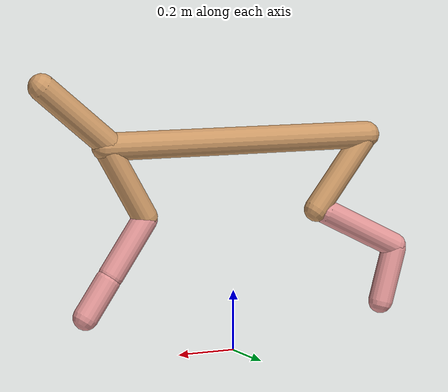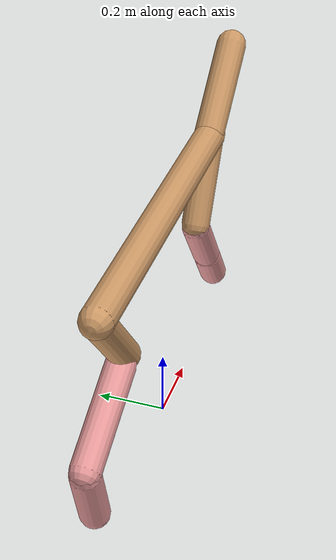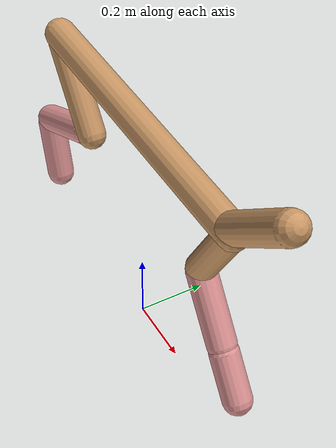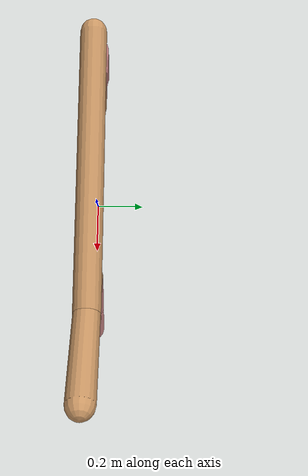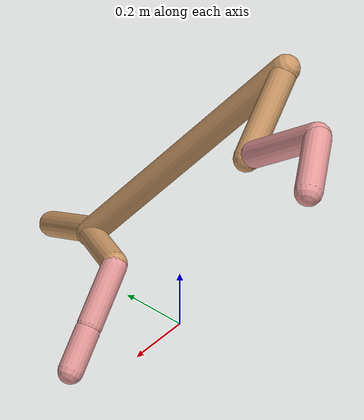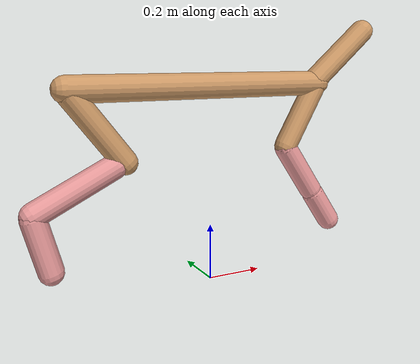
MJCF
<mujoco model="cheetah">
  <compiler angle="radian" coordinate="local" inertiafromgeom="true" settotalmass="14" />
  <default>
    <joint armature=".1" damping=".01" limited="true" solimplimit="0 .8 .03" solreflimit=".02 1" stiffness="8" />
    <geom conaffinity="0" condim="3" contype="1" friction="0.8 .1 .1" rgba="0.8 0.6 .4 1" solimp="0.0 0.8 0.01" solref="0.02 1" />
    <motor ctrllimited="true" ctrlrange="-1 1" />
  </default>
  <size nstack="300000" nuser_geom="1" />
  <option gravity="0 0 -9.81" timestep="0.01" />
  <worldbody>
    <body name="torso" pos="0.0 0.0 0.6978330855522978">
      <joint armature="0" axis="1 0 0" damping="0" limited="false" name="ignorex" pos="0 0 0" stiffness="0" type="slide" />
      <joint armature="0" axis="0 0 1" damping="0" limited="false" name="ignorez" pos="0 0 0" stiffness="0" type="slide" />
      <joint armature="0" axis="0 1 0" damping="0" limited="false" name="ignorey" pos="0 0 0" stiffness="0" type="hinge" />
      <geom fromto="-0.5 0.0 0.0 0.4538349954480955 0.0 0.0" name="torso" size="0.04550862323261411" type="capsule" />
      <geom axisangle="0 1 0 .87" name="head" pos="0.5538349954480956 0.0 0.1" size="0.04427116653705946 0.15" type="capsule" />

      <body name="bthigh" pos="-.5 0 0">
        <joint axis="0 1 0" damping="6" name="bthigh" pos="0 0 0" range="-.52 1.05" stiffness="240" type="hinge" />
        <geom axisangle="0 1 0 -3.8" name="bthigh" pos="0.09983765025151893 0.0 -0.1297889453269746" size="0.042178057143754284 0.14473372661447728" type="capsule" />
        <body name="bshin" pos="0.15967530050303785 0.0 -0.2495778906539492">
          <joint axis="0 1 0" damping="4.5" name="bshin" pos="0 0 0" range="-.785 .785" stiffness="180" type="hinge" />
          <geom axisangle="0 1 0 -2.03" name="bshin" pos="-0.1397536253556023 0.0 -0.06987681267780115" rgba="0.9 0.6 0.6 1" size="0.042178057143754284 0.14972454477359717" type="capsule" />
          <body name="bfoot" pos="-0.2795072507112046 0.0 -0.1397536253556023">
            <joint axis="0 1 0" damping="3" name="bfoot" pos="0 0 0" range="-.4 .785" stiffness="120" type="hinge" />
            <geom axisangle="0 1 0 -.27" name="bfoot" pos="0.02994899642756179 0.0 -0.09683508844911647" rgba="0.9 0.6 0.6 1" size="0.042178057143754284 0.09382738139145425" type="capsule" />
            <inertial mass="10" />
          </body>
        </body>
      </body>
      <body name="fthigh" pos="0.4538349954480956 0.0 0.0">
        <joint axis="0 1 0" damping="4.5" name="fthigh" pos="0 0 0" range="-1.5 0.8" stiffness="180" type="hinge" />
        <geom axisangle="0 1 0 .52" name="fthigh" pos="-0.06963103392312904 0.0 -0.11936748672536404" size="0.041995431662503406 0.13226773706329473" type="capsule" />
        <body name="fshin" pos="-0.13926206784625808 0.0 -0.23873497345072808">
          <joint axis="0 1 0" damping="3" name="fshin" pos="0 0 0" range="-1.2 1.1" stiffness="120" type="hinge" />
          <geom axisangle="0 1 0 -.6" name="fshin" pos="0.06465830299675673 0.0 -0.0895268810724324" rgba="0.9 0.6 0.6 1" size="0.041995431662503406 0.10541639194518225" type="capsule" />
          <body name="ffoot" pos="0.12931660599351347 0.0 -0.1790537621448648">
            <joint axis="0 1 0" damping="1.5" name="ffoot" pos="0 0 0" range="-3.1 -0.3" stiffness="60" type="hinge" />
            <geom axisangle="0 1 0 -.6" name="ffoot" pos="0.04479159118849426 0.0 -0.06967580851543553" rgba="0.9 0.6 0.6 1" size="0.041995431662503406 0.06961459845436566" type="capsule" />
            <inertial mass="10" />
          </body>
        </body>
      </body>
    </body>
  </worldbody>
  <actuator>
    <motor gear="120" joint="bthigh" name="bthigh" />
    <motor gear="90" joint="bshin" name="bshin" />
    <motor gear="60" joint="bfoot" name="bfoot" />
    <motor gear="120" joint="fthigh" name="fthigh" />
    <motor gear="60" joint="fshin" name="fshin" />
    <motor gear="30" joint="ffoot" name="ffoot" />
  </actuator>
</mujoco>
